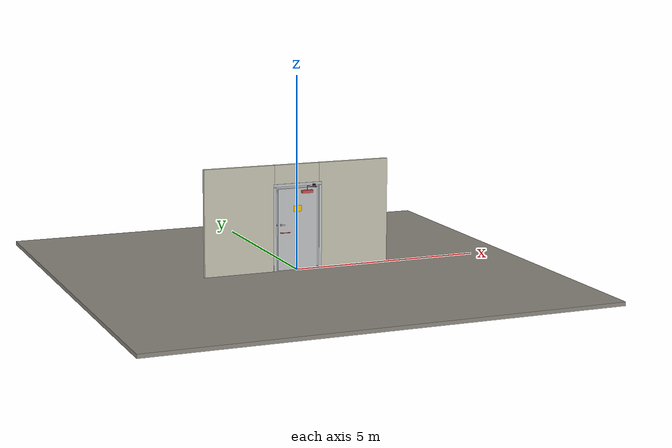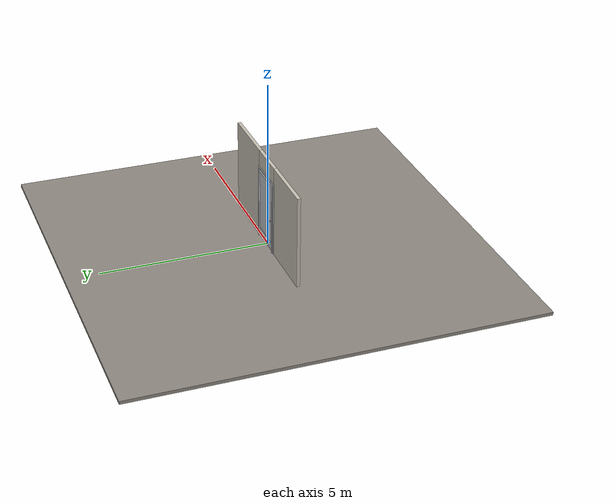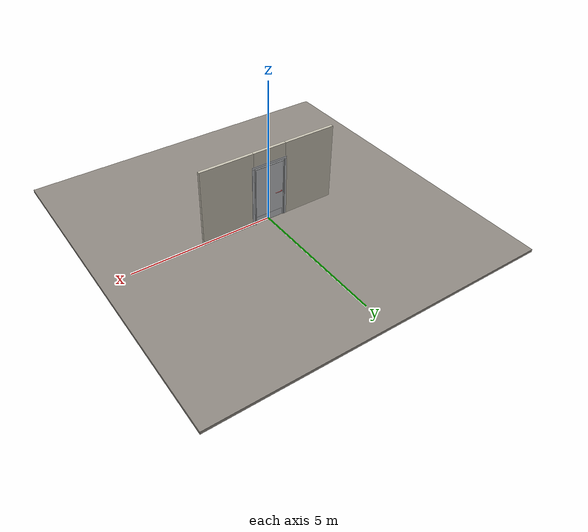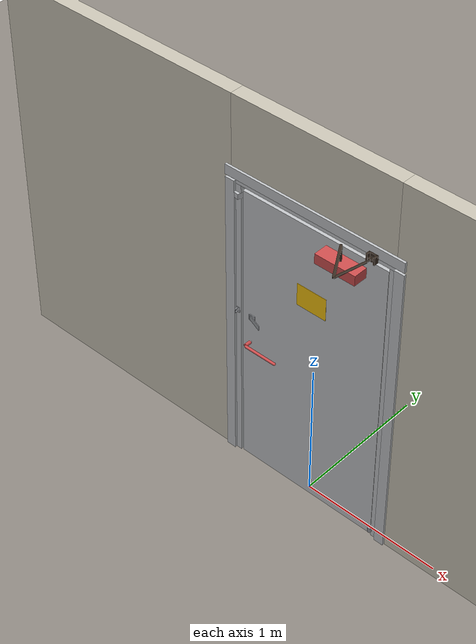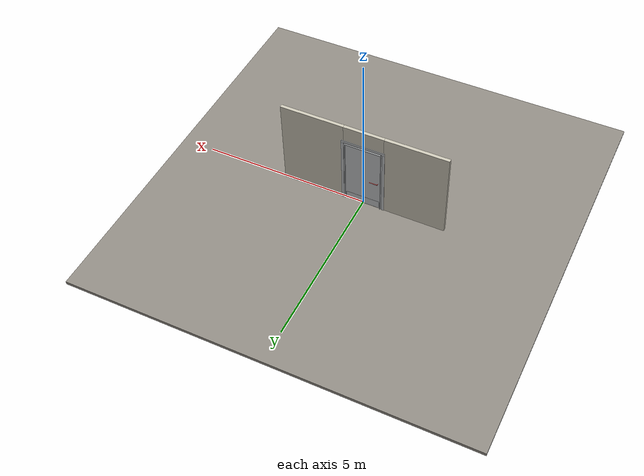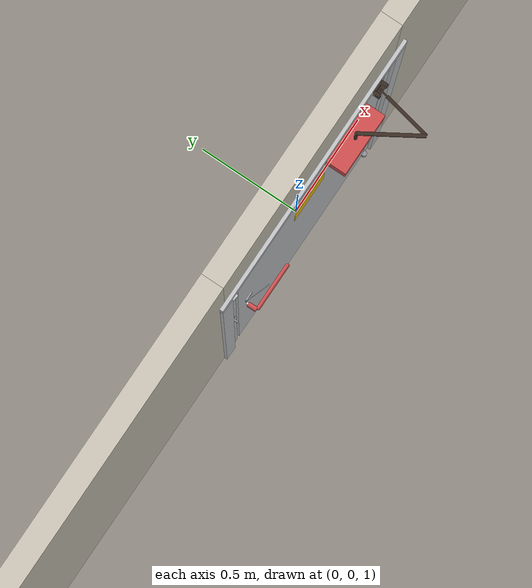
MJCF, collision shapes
<?xml version="1.0" ?>
<mujoco model="db0188_cold_storage_full">
  <compiler angle="radian" meshdir="../../hardware" texturedir="../../textures" autolimits="true" inertiafromgeom="false"/>
  <option timestep="0.002" integrator="implicitfast" cone="elliptic" impratio="10" noslip_iterations="3">
    <flag multiccd="enable"/>
  </option>
  <size memory="16M"/>
  <default>
    <geom condim="4" solref="0.005 1" solimp="0.95 0.99 0.001"/>
    <joint solreflimit="0.005 1" solimplimit="0.95 0.99 0.001"/>
    <tendon solreflimit="0.005 1"/>
    <equality solref="0.002 1"/>
  </default>
  <visual>
    <headlight ambient="0.4 0.4 0.4" diffuse="0.7 0.7 0.7" specular="0.2 0.2 0.2"/>
    <quality shadowsize="4096"/>
    <map znear="0.01" zfar="60"/>
  </visual>
  <asset>
    <mesh name="closer_body_fdc4667657" file="closer_body_fdc4667657.obj"/>
    <mesh name="hinge_05d9a38dfa" file="hinge_05d9a38dfa.obj"/>
    <mesh name="hinge_jamb_953fb56768" file="hinge_jamb_953fb56768.obj"/>
    <mesh name="lever_40740b93f7" file="lever_40740b93f7.obj"/>
    <material name="mat_floor" rgba="0.55 0.53 0.5 1" specular="0.2" shininess="0.15" reflectance="0"/>
    <material name="mat_wall" rgba="0.78 0.76 0.7 1" specular="0.2" shininess="0.1" reflectance="0"/>
    <material name="mat_hinge" rgba="0.55 0.56 0.58 1" specular="0.8" shininess="0.55" reflectance="0.4"/>
    <material name="mat_leaf" rgba="0.75 0.76 0.77 1" specular="0.8" shininess="0.65" reflectance="0.4"/>
    <material name="mat_op_chrome" rgba="0.9 0.9 0.92 1" specular="0.8" shininess="0.9" reflectance="0.4"/>
    <material name="mat_trim" rgba="0.85 0.66 0.3 1" specular="0.8" shininess="0.75" reflectance="0.4"/>
    <material name="mat_bolt" rgba="0.75 0.76 0.77 1" specular="0.8" shininess="0.65" reflectance="0.4"/>
    <material name="mat_op_steel_galvanized" rgba="0.65 0.66 0.68 1" specular="0.74" shininess="0.5" reflectance="0.36"/>
    <material name="mat_padlock" rgba="0.85 0.66 0.3 1" specular="0.8" shininess="0.75" reflectance="0.4"/>
    <material name="mat_frame" rgba="0.75 0.76 0.77 1" specular="0.8" shininess="0.65" reflectance="0.4"/>
    <material name="mat_seal" rgba="0.1 0.1 0.1 1" specular="0.2" shininess="0.1" reflectance="0"/>
    <material name="mat_closer" rgba="0.22 0.17 0.13 1" specular="0.8" shininess="0.6" reflectance="0.4"/>
    <material name="mat_kick" rgba="0.75 0.76 0.77 1" specular="0.8" shininess="0.65" reflectance="0.4"/>
    <material name="mat_placard" rgba="0.95 0.75 0.05 1" specular="0.2" shininess="0.5" reflectance="0"/>
    <texture name="skybox" type="skybox" builtin="gradient" rgb1="0.6 0.7 0.85" rgb2="0.9 0.92 0.95" width="256" height="256"/>
  </asset>
  <worldbody>
    <light name="sun" pos="1.5 -2.5 4" dir="-0.3 0.5 -0.8" directional="true" diffuse="0.8 0.8 0.8" specular="0.3 0.3 0.3" castshadow="true"/>
    <light name="fill" pos="-1.5 2.5 3" dir="0.3 -0.5 -0.7" directional="true" diffuse="0.35 0.35 0.4" castshadow="false"/>
    <camera name="robot_view" pos="0 -2.640625 1.814375" xyaxes="1 0 0 0 0.26963 0.962964" fovy="52"/>
    <camera name="far_view" pos="0 2.640625 1.814375" xyaxes="-1 0 0 0 -0.26963 0.962964" fovy="52"/>
    <camera name="iso" pos="-2.006875 -2.218125 2.236875" xyaxes="0.741536 -0.670913 0 0.242917 0.268487 0.932151" fovy="46"/>
    <camera name="detail_handle" pos="-0.083 -0.905 1.28" xyaxes="0.97561 0.219512 0 -0.070934 0.315262 0.94635" fovy="38"/>
    <geom name="floor" type="box" size="6 6 0.05" pos="0 0 -0.05" material="mat_floor" group="0" contype="1" conaffinity="1" friction="0.8 0.005 0.0001" density="2400"/>
    <geom name="wall_left" type="box" size="0.94 0.05 1.375" pos="-1.56 0 1.375" material="mat_wall" group="0" contype="1" conaffinity="1" friction="0.6 0.005 0.0001" density="800"/>
    <geom name="wall_right" type="box" size="0.955 0.05 1.375" pos="1.545 0 1.375" material="mat_wall" group="0" contype="1" conaffinity="1" friction="0.6 0.005 0.0001" density="800"/>
    <geom name="wall_header" type="box" size="0.605 0.05 0.2625" pos="-0.015 0 2.4875" material="mat_wall" group="0" contype="1" conaffinity="1" friction="0.6 0.005 0.0001" density="800"/>
    <geom name="hinge_0_jamb" type="mesh" mesh="hinge_jamb_953fb56768" pos="0.542 -0.057 0.262" quat="0 0 1 0" material="mat_hinge" group="1" contype="0" conaffinity="0" density="7850"/>
    <geom name="hinge_1_jamb" type="mesh" mesh="hinge_jamb_953fb56768" pos="0.542 -0.057 1.0692" quat="0 0 1 0" material="mat_hinge" group="1" contype="0" conaffinity="0" density="7850"/>
    <geom name="hinge_2_jamb" type="mesh" mesh="hinge_jamb_953fb56768" pos="0.542 -0.057 1.9464" quat="0 0 1 0" material="mat_hinge" group="1" contype="0" conaffinity="0" density="7850"/>
    <geom name="leaf_staple_leg_n" type="box" size="0.003 0.0025 0.014" pos="-0.572 -0.064 1.2125" quat="0 0 -0.707107 0.707107" material="mat_op_steel_galvanized" group="0" contype="1" conaffinity="1" friction="0.6 0.005 0.0001" density="7800"/>
    <geom name="leaf_staple_leg_p" type="box" size="0.003 0.0025 0.014" pos="-0.572 -0.064 1.1875" quat="0 0 -0.707107 0.707107" material="mat_op_steel_galvanized" group="0" contype="1" conaffinity="1" friction="0.6 0.005 0.0001" density="7800"/>
    <geom name="leaf_staple_bridge" type="box" size="0.003 0.015 0.0025" pos="-0.572 -0.0755 1.2" quat="0 0 -0.707107 0.707107" material="mat_op_steel_galvanized" group="0" contype="1" conaffinity="1" friction="0.6 0.005 0.0001" density="7800"/>
    <geom name="leaf_staple_base" type="box" size="0.016 0.021 0.001" pos="-0.572 -0.051 1.2" quat="0 0 -0.707107 0.707107" material="mat_op_steel_galvanized" group="1" contype="0" conaffinity="0" density="7800"/>
    <geom name="jamb_hinge" type="box" size="0.0225 0.05 1.075" pos="0.5675 0 1.075" material="mat_frame" group="0" contype="1" conaffinity="1" friction="0.6 0.005 0.0001" density="300"/>
    <geom name="strike_2076_wall_n" type="box" size="0.0375 0.02125 0.019" pos="-0.5825 0.02875 2.0764" material="mat_frame" group="0" contype="1" conaffinity="1" friction="0.6 0.005 0.0001" density="300"/>
    <geom name="strike_2076_wall_p" type="box" size="0.0375 0.008 0.019" pos="-0.5825 -0.0155 2.0764" material="mat_frame" group="0" contype="1" conaffinity="1" friction="0.6 0.005 0.0001" density="300"/>
    <geom name="strike_2076_ramp" type="box" size="0.0375 0.023512 0.019" pos="-0.585582 -0.041168 2.0764" quat="0.997211 0 0 -0.074638" material="mat_frame" group="0" contype="1" conaffinity="1" friction="0.12 0.005 0.0001" density="300"/>
    <geom name="strike_2076_ramp_n" type="box" size="0.0375 0.023512 0.019" pos="-0.585582 0.029168 2.0764" quat="0.997211 0 0 0.074638" material="mat_frame" group="0" contype="1" conaffinity="1" friction="0.12 0.005 0.0001" density="300"/>
    <geom name="strike_2076_back" type="box" size="0.0325 0.0075 0.019" pos="-0.5875 0 2.0764" material="mat_frame" group="0" contype="1" conaffinity="1" friction="0.6 0.005 0.0001" density="300"/>
    <geom name="jamb_strike_0" type="box" size="0.0375 0.05 1.0287" pos="-0.5825 0 1.0287" material="mat_frame" group="0" contype="1" conaffinity="1" friction="0.6 0.005 0.0001" density="300"/>
    <geom name="jamb_strike_1" type="box" size="0.0375 0.05 0.0273" pos="-0.5825 0 2.1227" material="mat_frame" group="0" contype="1" conaffinity="1" friction="0.6 0.005 0.0001" density="300"/>
    <geom name="jamb_head" type="box" size="0.605 0.05 0.0225" pos="-0.015 0 2.1725" material="mat_frame" group="0" contype="1" conaffinity="1" friction="0.6 0.005 0.0001" density="300"/>
    <geom name="head_stud" type="box" size="0.605 0.05 0.015" pos="-0.015 0 2.21" material="mat_wall" group="0" contype="1" conaffinity="1" friction="0.6 0.005 0.0001" density="500"/>
    <geom name="stop_hinge" type="box" size="0.0055 0.016 1.075" pos="0.5395 0.0665 1.075" material="mat_frame" group="0" contype="1" conaffinity="1" friction="0.6 0.005 0.0001" density="300"/>
    <geom name="stop_strike" type="box" size="0.0055 0.016 1.075" pos="-0.5395 0.0665 1.075" material="mat_frame" group="0" contype="1" conaffinity="1" friction="0.6 0.005 0.0001" density="300"/>
    <geom name="stop_head" type="box" size="0.545 0.016 0.0055" pos="0 0.0665 2.1445" material="mat_frame" group="0" contype="1" conaffinity="1" friction="0.6 0.005 0.0001" density="300"/>
    <geom name="seal_hinge" type="box" size="0.004 0.005 1.075" pos="0.542 0.055 1.075" material="mat_seal" group="1" contype="0" conaffinity="0" density="1100"/>
    <geom name="seal_strike" type="box" size="0.004 0.005 1.075" pos="-0.542 0.055 1.075" material="mat_seal" group="1" contype="0" conaffinity="0" density="1100"/>
    <geom name="seal_head" type="box" size="0.525 0.005 0.008" pos="0 0.055 2.138" material="mat_seal" group="1" contype="0" conaffinity="0" density="1100"/>
    <geom name="casing_l_n" type="box" size="0.035 0.008 1.0975" pos="-0.62 -0.058 1.075" material="mat_frame" group="2" contype="0" conaffinity="0" density="300"/>
    <geom name="casing_r_n" type="box" size="0.035 0.008 1.0975" pos="0.62 -0.058 1.075" material="mat_frame" group="2" contype="0" conaffinity="0" density="300"/>
    <geom name="casing_h_n" type="box" size="0.655 0.008 0.035" pos="0 -0.058 2.225" material="mat_frame" group="2" contype="0" conaffinity="0" density="300"/>
    <geom name="casing_l_p" type="box" size="0.035 0.008 1.0975" pos="-0.62 0.058 1.075" material="mat_frame" group="2" contype="0" conaffinity="0" density="300"/>
    <geom name="casing_r_p" type="box" size="0.035 0.008 1.0975" pos="0.62 0.058 1.075" material="mat_frame" group="2" contype="0" conaffinity="0" density="300"/>
    <geom name="casing_h_p" type="box" size="0.655 0.008 0.035" pos="0 0.058 2.225" material="mat_frame" group="2" contype="0" conaffinity="0" density="300"/>
    <geom name="closer_bracket" type="box" size="0.032 0.004 0.025667" pos="0.445 -0.07 2.187667" material="mat_closer" group="1" contype="0" conaffinity="0" density="2700"/>
    <geom name="closer_shoe_guide_-1" type="box" size="0.006 0.016 0.025667" pos="0.419 -0.082 2.187667" material="mat_closer" group="1" contype="0" conaffinity="0" density="2700"/>
    <geom name="closer_shoe_guide_+1" type="box" size="0.006 0.016 0.025667" pos="0.471 -0.082 2.187667" material="mat_closer" group="1" contype="0" conaffinity="0" density="2700"/>
    <site name="approach_point" pos="0 -1.5 0" quat="1 0 0 0" size="0.05" rgba="0.2 0.9 0.2 0.5" group="4"/>
    <site name="goal_point" pos="0 1.5 0" quat="1 0 0 0" size="0.05" rgba="0.2 0.9 0.2 0.5" group="4"/>
    <site name="door_plane_center" pos="0 0 1.075" quat="1 0 0 0" size="0.02" rgba="0.2 0.9 0.2 0.5" group="4"/>
    <body name="leaf_riser" pos="0.545 0 0">
      <inertial pos="-0.003 -0.057 0.055" mass="0.174012" quat="0 0.707107 0 0.707107" diaginertia="0.000017053 0.00002732 0.00002732"/>
      <joint name="leaf_rise" type="slide" axis="0 0 1" limited="true" range="0 0.0264" damping="1" armature="0.5"/>
      <geom name="leaf_riser_marker" type="cylinder" size="0.014 0.018" pos="-0.003 -0.057 0.055" material="mat_hinge" group="1" contype="0" conaffinity="0" density="7850"/>
      <body name="leaf" pos="0 0 0">
        <inertial pos="-0.47041 -0.020153 1.227322" mass="58.109024" quat="0.52328 -0.521371 -0.458548 -0.494048" diaginertia="5.205388647 28.621782653 33.618740754"/>
        <joint name="leaf_hinge" type="hinge" axis="0 0 1" pos="-0.003 -0.057 0" limited="true" range="0 1.745329" solreflimit="0.02 1" damping="12.504234" frictionloss="4.240312" stiffness="16.997748" springref="-1.529614" armature="0.02"/>
        <geom name="leaf_slab" type="box" size="0.535 0.05 1.0572" pos="-0.538 0 1.0692" material="mat_leaf" group="0" contype="1" conaffinity="1" friction="0.35 0.005 0.0001" density="1"/>
        <geom name="hinge_0" type="mesh" mesh="hinge_05d9a38dfa" pos="-0.003 -0.057 0.262" quat="0 0 1 0" material="mat_hinge" group="1" contype="0" conaffinity="0" density="7850"/>
        <geom name="hinge_1" type="mesh" mesh="hinge_05d9a38dfa" pos="-0.003 -0.057 1.0692" quat="0 0 1 0" material="mat_hinge" group="1" contype="0" conaffinity="0" density="7850"/>
        <geom name="hinge_2" type="mesh" mesh="hinge_05d9a38dfa" pos="-0.003 -0.057 1.9464" quat="0 0 1 0" material="mat_hinge" group="1" contype="0" conaffinity="0" density="7850"/>
        <geom name="leaf_mag_catch_faceplate" type="box" size="0.0006 0.012 0.029" pos="-1.0724 0 2.0764" material="mat_bolt" group="1" contype="0" conaffinity="0" density="8500"/>
        <geom name="leaf_hasp_plate" type="box" size="0.024 0.0215 0.003" pos="-0.998 -0.053 1.2" quat="0 0 -0.707107 0.707107" material="mat_op_steel_galvanized" group="1" contype="0" conaffinity="0" density="7800"/>
        <geom name="closer_body" type="mesh" mesh="closer_body_fdc4667657" pos="-0.3 -0.05 2.0344" quat="0 0 -0.707107 0.707107" material="mat_closer" group="1" contype="0" conaffinity="0" density="2000"/>
        <geom name="closer_body_col" type="box" size="0.145 0.05 0.035" pos="-0.3 -0.1 2.0344" material="mat_closer" group="3" contype="1" conaffinity="1" rgba="0.8 0.3 0.3 0.25" friction="0.6 0.005 0.0001" density="2000"/>
        <geom name="closer_pinion_shaft" type="cylinder" size="0.008 0.0728" pos="-0.3 -0.101 2.1072" material="mat_closer" group="1" contype="0" conaffinity="0" density="2700"/>
        <geom name="kick_plate_p" type="box" size="0.505 0.0008 0.125" pos="-0.538 0.0508 0.147" material="mat_kick" group="2" contype="0" conaffinity="0" density="7900"/>
        <geom name="warning_placard" type="box" size="0.11 0.001 0.08" pos="-0.538 -0.051 1.5978" material="mat_placard" group="2" contype="0" conaffinity="0" density="1000"/>
        <site name="leaf_edge_mid" pos="-1.073 0 1.0572" quat="1 0 0 0" size="0.02" rgba="0.2 0.9 0.2 0.5" group="4"/>
        <body name="leaf_handle" pos="-1.008 0 1">
          <inertial pos="0.046153 0 0" mass="2.987827" quat="0.707107 0 0 -0.707107" diaginertia="0.018437997 0.023746754 0.040214564"/>
          <joint name="leaf_handle_hinge" type="hinge" axis="0 1 0" limited="true" range="0 0.5" damping="0.589936" frictionloss="0.07" stiffness="2.5" springref="-0.96" armature="0.01"/>
          <geom name="leaf_handle_spindle" type="cylinder" size="0.006 0.058" pos="0 0 0" quat="0.707107 -0.707107 0 0" material="mat_op_chrome" group="1" contype="0" conaffinity="0" density="7850"/>
          <geom name="leaf_handle_lever_n" type="mesh" mesh="lever_40740b93f7" pos="0 -0.05 0" quat="0 0 -0.707107 0.707107" material="mat_op_chrome" group="1" contype="0" conaffinity="0" density="3000"/>
          <geom name="leaf_handle_lever_col_n" type="capsule" size="0.0095 0.1155" pos="0.125 -0.105 0" quat="0.707107 0 0.707107 0" material="mat_op_chrome" group="3" contype="1" conaffinity="1" rgba="0.8 0.3 0.3 0.25" friction="0.7 0.01 0.0001" density="3000"/>
          <geom name="leaf_handle_hub_col_n" type="cylinder" size="0.012 0.022" pos="0 -0.08 0" quat="0.707107 -0.707107 0 0" material="mat_op_chrome" group="3" contype="1" conaffinity="1" rgba="0.8 0.3 0.3 0.25" friction="0.6 0.005 0.0001" density="3000"/>
          <geom name="leaf_handle_lever_p" type="mesh" mesh="lever_40740b93f7" pos="0 0.05 0" quat="0 0 0.707107 0.707107" material="mat_op_chrome" group="1" contype="0" conaffinity="0" density="3000"/>
          <geom name="leaf_handle_lever_col_p" type="capsule" size="0.0095 0.1155" pos="0.125 0.105 0" quat="0.707107 0 0.707107 0" material="mat_op_chrome" group="3" contype="1" conaffinity="1" rgba="0.8 0.3 0.3 0.25" friction="0.7 0.01 0.0001" density="3000"/>
          <geom name="leaf_handle_hub_col_p" type="cylinder" size="0.012 0.022" pos="0 0.08 0" quat="0.707107 -0.707107 0 0" material="mat_op_chrome" group="3" contype="1" conaffinity="1" rgba="0.8 0.3 0.3 0.25" friction="0.6 0.005 0.0001" density="3000"/>
          <site name="leaf_handle_grip_n" pos="0.2 -0.105 0" quat="1 0 0 0" size="0.012" rgba="0.2 0.9 0.2 0.5" group="4"/>
          <site name="leaf_handle_grip_p" pos="0.2 0.105 0" quat="1 0 0 0" size="0.012" rgba="0.2 0.9 0.2 0.5" group="4"/>
        </body>
        <body name="leaf_mag_catch" pos="-1.073 0 2.0764">
          <inertial pos="0.012 0 0" mass="0.030762" quat="0 0 -0.707107 0.707107" diaginertia="0.000000526 0.000002949 0.000002949"/>
          <joint name="leaf_mag_catch_slide" type="slide" axis="1 0 0" limited="true" range="0 0.006" damping="2" frictionloss="0.3" stiffness="20000" springref="-0.006" armature="0.1"/>
          <geom name="leaf_mag_catch_capsule" type="capsule" size="0.006 0.012" pos="0.012 0 0" quat="0.707107 0 -0.707107 0" material="mat_bolt" group="0" contype="1" conaffinity="1" friction="0.2 0.005 0.0001" density="8500"/>
        </body>
        <body name="leaf_hasp" pos="-1.018 -0.056 1.2">
          <inertial pos="0.047504 -0.014824 0" mass="0.120573" quat="0.695935 0.695935 -0.125199 -0.125199" diaginertia="0.00001368 0.000185913 0.000199083"/>
          <joint name="leaf_hasp_hinge" type="hinge" axis="0 0 1" limited="true" range="0 2.9" damping="0.02" frictionloss="0.05" armature="0.005" ref="2.8"/>
          <geom name="leaf_hasp_strap" type="box" size="0.0605 0.0175 0.0015" pos="0.057507 -0.018853 0" quat="-0.696818 0.696818 -0.120185 0.120185" material="mat_op_steel_galvanized" group="0" contype="1" conaffinity="1" friction="0.6 0.005 0.0001" density="7800"/>
          <geom name="leaf_hasp_knuckle" type="cylinder" size="0.0045 0.0215" pos="0.00134 0.003769 0" quat="0.169967 0 0 0.98545" material="mat_op_steel_galvanized" group="1" contype="0" conaffinity="0" density="7850"/>
          <site name="leaf_hasp_grip" pos="0.098514 -0.024412 0" quat="0.169967 0 0 0.98545" size="0.01" rgba="0.2 0.9 0.2 0.5" group="4"/>
        </body>
        <body name="closer_arm_main" pos="-0.3 -0.101 2.18" quat="0.874163 0 0 -0.485633">
          <inertial pos="0.14 0 0" mass="0.12096" quat="1 0 0 0" diaginertia="0.000003588 0.00079128 0.000792852"/>
          <joint name="closer_pinion" type="hinge" axis="0 0 1" limited="false" damping="0.01" armature="0.002"/>
          <geom name="closer_arm_main_geom" type="box" size="0.14 0.008 0.005" pos="0.14 0 0" material="mat_closer" group="1" contype="0" conaffinity="0" density="2700"/>
          <body name="closer_arm_fore" pos="0.28 0 0" quat="0.37011 0 0 0.928988">
            <inertial pos="0.127353 0 0" mass="0.076107" quat="1 0 0 0" diaginertia="0.000001712 0.000430185 0.000430774"/>
            <joint name="closer_elbow" type="hinge" axis="0 0 1" limited="false" damping="0.01" armature="0.002"/>
            <geom name="closer_arm_fore_geom" type="box" size="0.1125 0.007 0.004" pos="0.1125 0 0" material="mat_closer" group="1" contype="0" conaffinity="0" density="2700"/>
            <geom name="closer_shoe_neck" type="box" size="0.0175 0.003 0.003" pos="0.2425 0 0" material="mat_closer" group="1" contype="0" conaffinity="0" density="2700"/>
            <geom name="closer_shoe_pivot" type="cylinder" size="0.005 0.011" pos="0.26 0 0" material="mat_closer" group="1" contype="0" conaffinity="0" density="2700"/>
          </body>
        </body>
      </body>
    </body>
    <body name="closer_shoe" pos="0.445 -0.084 2.18">
      <inertial pos="0 0 0" mass="0.033696" quat="1 0 0 0" diaginertia="0.000001842 0.00000499 0.000005394"/>
      <joint name="closer_shoe_slide" type="slide" axis="0 0 1" limited="true" range="0 0.015333" damping="0.1" armature="0.05"/>
      <geom name="closer_shoe_block" type="box" size="0.0195 0.01 0.008" pos="0 0 0" material="mat_closer" group="1" contype="0" conaffinity="0" density="2700"/>
    </body>
  </worldbody>
  <equality>
    <joint name="leaf_rise_couple" joint1="leaf_rise" joint2="leaf_hinge" polycoef="0 0.007639 0 0 0" active="true"/>
    <connect name="closer_arm_connect" body1="closer_arm_fore" body2="closer_shoe" anchor="0.26 0 0" active="true"/>
  </equality>
  <contact>
    <exclude body1="closer_arm_main" body2="leaf"/>
    <exclude body1="closer_arm_fore" body2="leaf"/>
    <exclude body1="closer_arm_main" body2="closer_arm_fore"/>
  </contact>
  <sensor>
    <jointpos name="leaf_hinge_pos" joint="leaf_hinge"/>
    <jointvel name="leaf_hinge_vel" joint="leaf_hinge"/>
    <jointpos name="leaf_handle_hinge_pos" joint="leaf_handle_hinge"/>
    <jointvel name="leaf_handle_hinge_vel" joint="leaf_handle_hinge"/>
    <jointpos name="leaf_mag_catch_slide_pos" joint="leaf_mag_catch_slide"/>
    <jointvel name="leaf_mag_catch_slide_vel" joint="leaf_mag_catch_slide"/>
    <jointpos name="leaf_hasp_hinge_pos" joint="leaf_hasp_hinge"/>
    <jointvel name="leaf_hasp_hinge_vel" joint="leaf_hasp_hinge"/>
  </sensor>
</mujoco>
